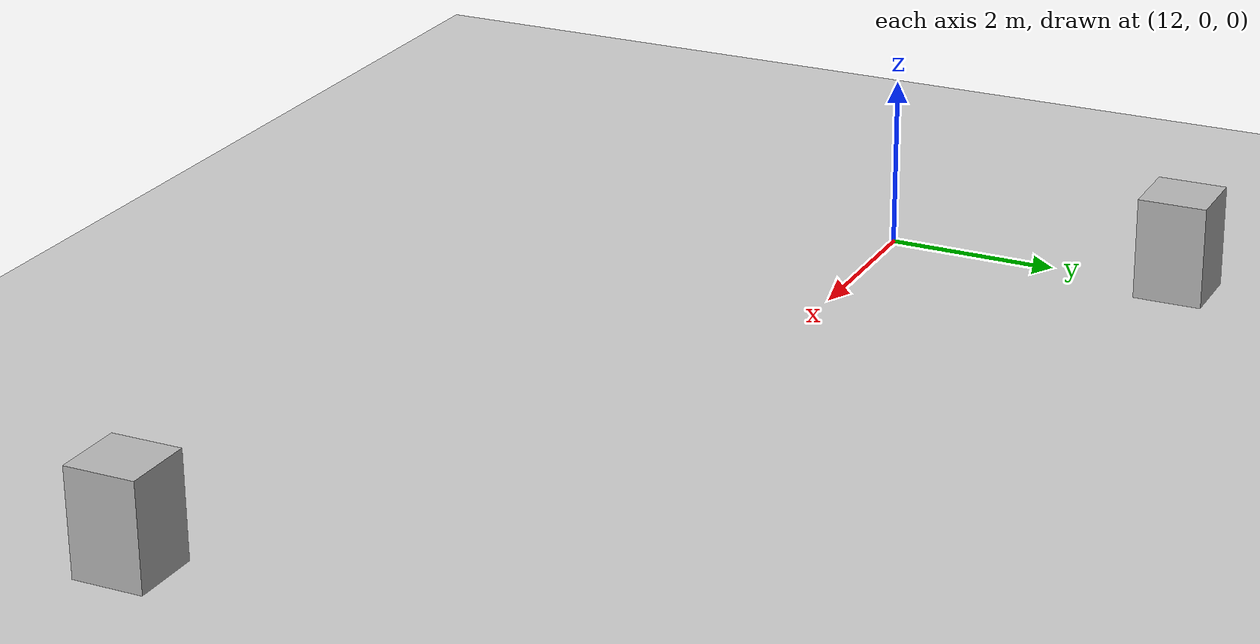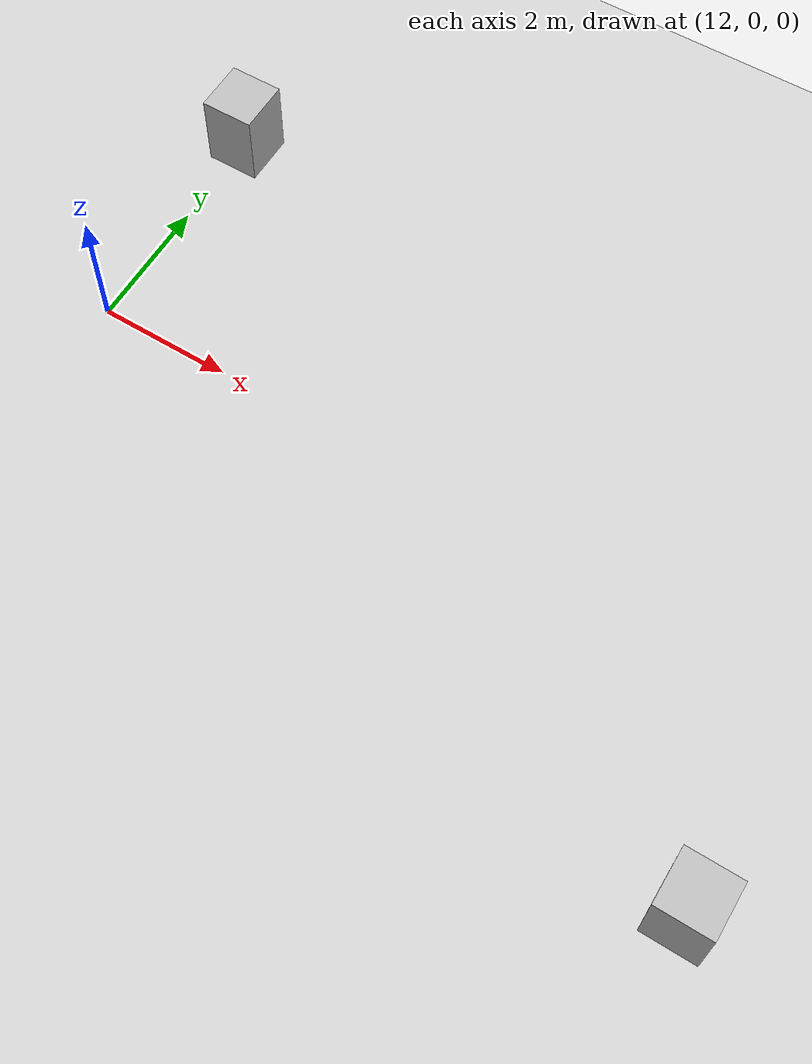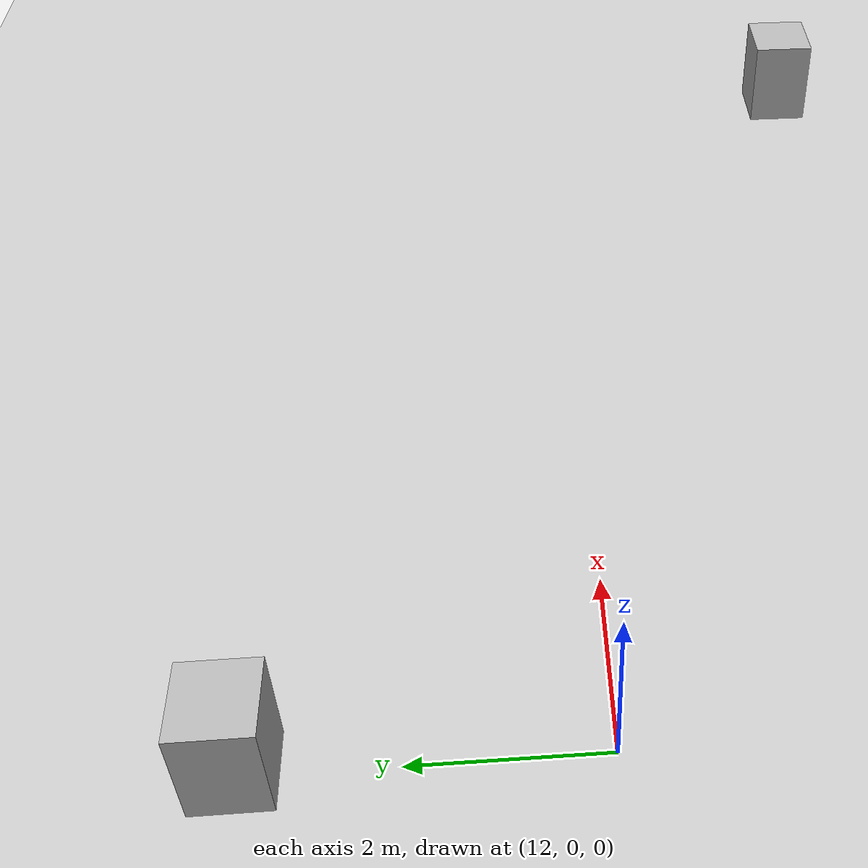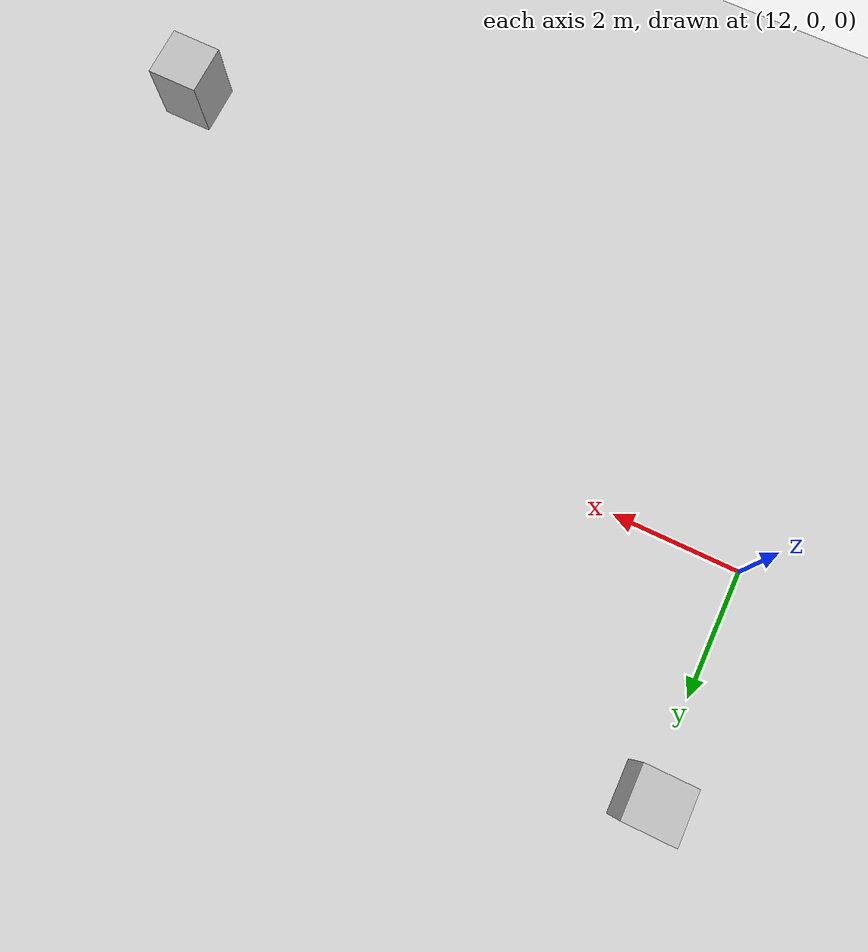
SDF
<?xml version="1.0"?>
<sdf version="1.6">
  <world name="v2-04e-cruise-s4701">
    <gravity>0 0 -9.81</gravity>
    <physics name="v2_deterministic" type="ode">
      <max_step_size>0.002</max_step_size>
      <real_time_update_rate>500</real_time_update_rate>
    </physics>
    <include>
      <uri>model://sun</uri>
    </include>
    <include>
      <uri>model://ground_plane</uri>
    </include>
    <model name="cruise-left">
      <static>true</static>
      <pose>12.046499731 3.520036603 0.600000000 0 0 0.005921058</pose>
      <link name="link">
        <collision name="collision">
          <geometry>
            <box>
              <size>0.800000 0.800000 1.200000</size>
            </box>
          </geometry>
        </collision>
        <visual name="visual">
          <geometry>
            <box>
              <size>0.800000 0.800000 1.200000</size>
            </box>
          </geometry>
        </visual>
      </link>
    </model>
    <model name="cruise-right">
      <static>true</static>
      <pose>22.943091114 -3.451211688 0.600000000 0 0 -0.004155755</pose>
      <link name="link">
        <collision name="collision">
          <geometry>
            <box>
              <size>0.800000 0.800000 1.200000</size>
            </box>
          </geometry>
        </collision>
        <visual name="visual">
          <geometry>
            <box>
              <size>0.800000 0.800000 1.200000</size>
            </box>
          </geometry>
        </visual>
      </link>
    </model>
  </world>
</sdf>
